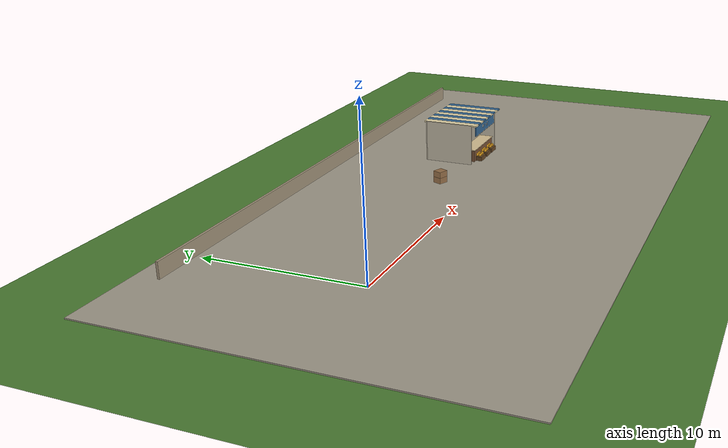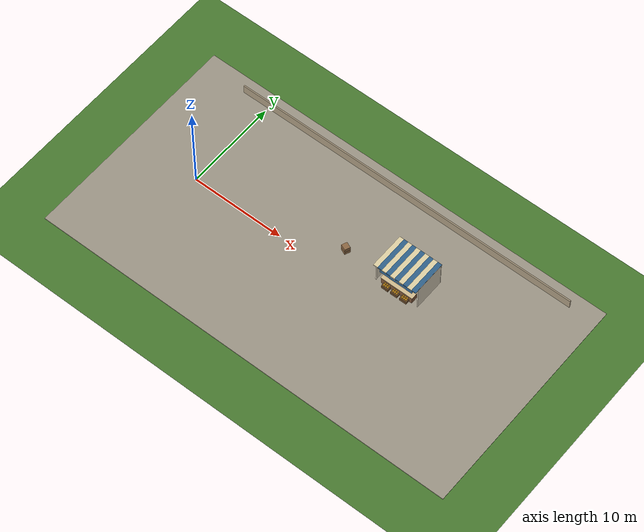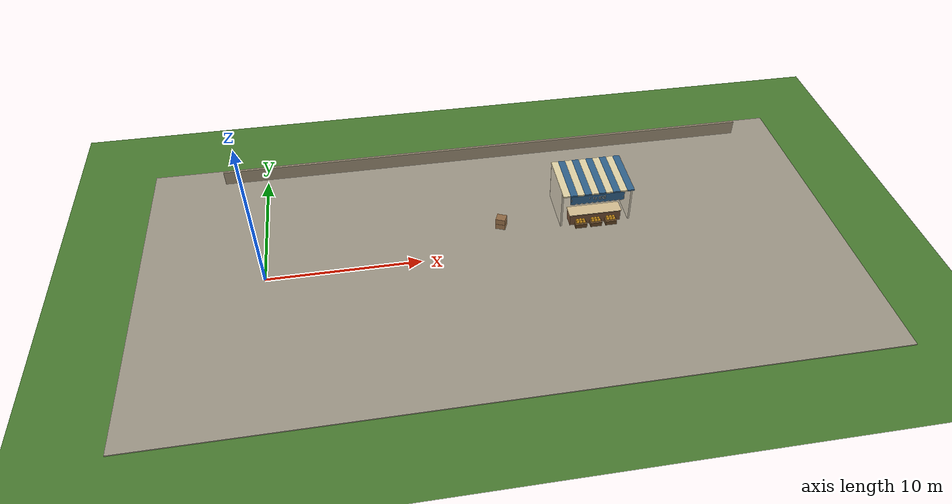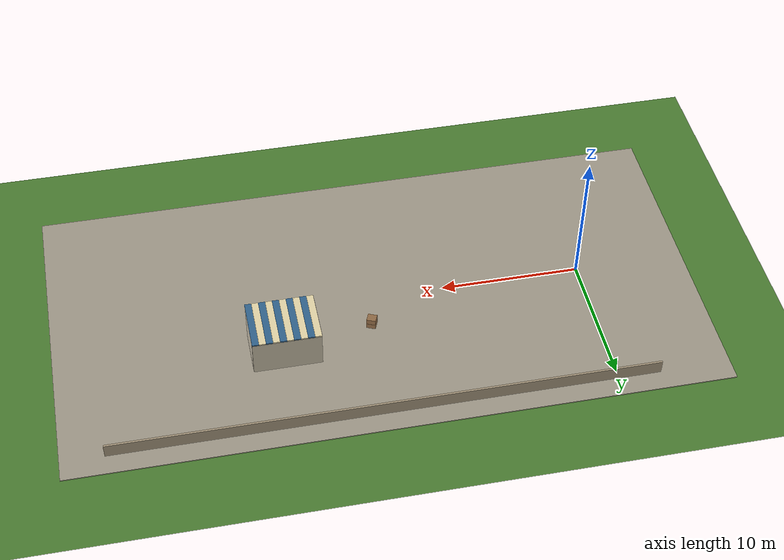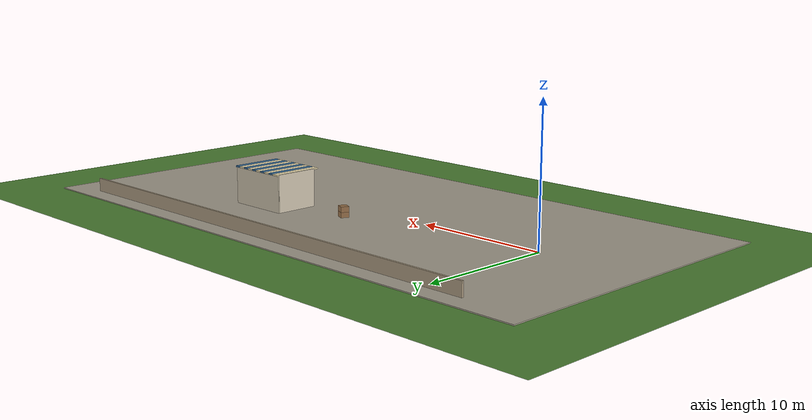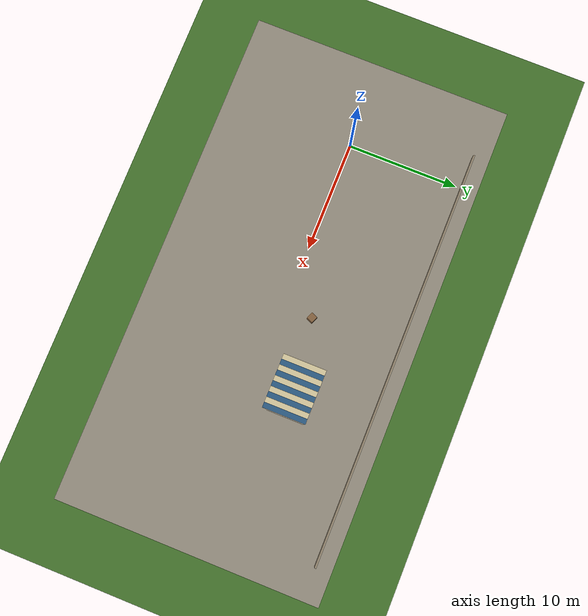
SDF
<sdf version="1.10">
 <world name="swan_town">
  <model name="ground_plane">
   <pose>-14 30 -0.025 0 0 0</pose>
   <static>true</static>
   <link name="link">
    <collision name="collision">
     <geometry><plane><normal>0 0 1</normal><size>100 100</size></plane></geometry>
    </collision>
    <visual name="visual">
     <geometry><plane><normal>0 0 1</normal><size>100 100</size></plane></geometry>
     <material><ambient>0.3 0.5 0.2 1</ambient><diffuse>0.3 0.5 0.2 1</diffuse></material>
    </visual>
   </link>
  </model>
  <model name="ground">
   <static>true</static>
   <pose>15 0 -0.1 0 0 0</pose>
   <link name="body">
    <collision name="box_collision"><geometry><box><size>46 24 0.2</size></box></geometry></collision>
    <visual name="box_visual">
     <geometry><box><size>46 24 0.2</size></box></geometry>
     <material><ambient>0.64 0.61 0.55 1</ambient><diffuse>0.64 0.61 0.55 1</diffuse></material>
    </visual>
   </link>
  </model>
  <model name="boundary_1">
   <static>true</static>
   <pose>16 10.5 0.5 0 0 0</pose>
   <link name="body">
    <collision name="box_collision"><geometry><box><size>38 0.15 1</size></box></geometry></collision>
    <visual name="box_visual">
     <geometry><box><size>38 0.15 1</size></box></geometry>
     <material><ambient>0.65 0.59 0.49 1</ambient><diffuse>0.65 0.59 0.49 1</diffuse></material>
    </visual>
   </link>
  </model>
  <model name="stall_02">
   <static>true</static>
   <pose>22 3.5471 0 0 0 0</pose>
   <link name="body">
    <collision name="rear_collision">
     <pose>0 1.65 1.4 0 0 0</pose>
     <geometry><box><size>4.8 0.15 2.8</size></box></geometry>
    </collision>
    <visual name="rear_visual">
     <pose>0 1.65 1.4 0 0 0</pose>
     <geometry><box><size>4.8 0.15 2.8</size></box></geometry>
     <material><ambient>0.78 0.74 0.65 1</ambient><diffuse>0.78 0.74 0.65 1</diffuse></material>
    </visual>
    <collision name="side_-2.35_collision">
     <pose>-2.35 0 1.4 0 0 0</pose>
     <geometry><box><size>0.12 3.3 2.8</size></box></geometry>
    </collision>
    <visual name="side_-2.35_visual">
     <pose>-2.35 0 1.4 0 0 0</pose>
     <geometry><box><size>0.12 3.3 2.8</size></box></geometry>
     <material><ambient>0.81 0.77 0.69 1</ambient><diffuse>0.81 0.77 0.69 1</diffuse></material>
    </visual>
    <collision name="side_2.35_collision">
     <pose>2.35 0 1.4 0 0 0</pose>
     <geometry><box><size>0.12 3.3 2.8</size></box></geometry>
    </collision>
    <visual name="side_2.35_visual">
     <pose>2.35 0 1.4 0 0 0</pose>
     <geometry><box><size>0.12 3.3 2.8</size></box></geometry>
     <material><ambient>0.81 0.77 0.69 1</ambient><diffuse>0.81 0.77 0.69 1</diffuse></material>
    </visual>
    <collision name="counter_collision">
     <pose>0 -1.22 0.4 0 0 0</pose>
     <geometry><box><size>3.5 0.85 0.8</size></box></geometry>
    </collision>
    <visual name="counter_visual">
     <pose>0 -1.22 0.4 0 0 0</pose>
     <geometry><box><size>3.5 0.85 0.8</size></box></geometry>
     <material><ambient>0.47 0.32 0.21 1</ambient><diffuse>0.47 0.32 0.21 1</diffuse></material>
    </visual>
    <collision name="counter_top_collision">
     <pose>0 -1.22 0.83 0 0 0</pose>
     <geometry><box><size>3.6 0.95 0.06</size></box></geometry>
    </collision>
    <visual name="counter_top_visual">
     <pose>0 -1.22 0.83 0 0 0</pose>
     <geometry><box><size>3.6 0.95 0.06</size></box></geometry>
     <material><ambient>0.86 0.77 0.59 1</ambient><diffuse>0.86 0.77 0.59 1</diffuse></material>
    </visual>
    <collision name="awning_0_collision">
     <pose>-2.16 -0.1 2.78 0 0 0</pose>
     <geometry><box><size>0.48 3.85 0.1</size></box></geometry>
    </collision>
    <visual name="awning_0_visual">
     <pose>-2.16 -0.1 2.78 0 0 0</pose>
     <geometry><box><size>0.48 3.85 0.1</size></box></geometry>
     <material><ambient>0.92 0.86 0.68 1</ambient><diffuse>0.92 0.86 0.68 1</diffuse></material>
    </visual>
    <collision name="awning_1_collision">
     <pose>-1.68 -0.1 2.78 0 0 0</pose>
     <geometry><box><size>0.48 3.85 0.1</size></box></geometry>
    </collision>
    <visual name="awning_1_visual">
     <pose>-1.68 -0.1 2.78 0 0 0</pose>
     <geometry><box><size>0.48 3.85 0.1</size></box></geometry>
     <material><ambient>0.2 0.4 0.57 1</ambient><diffuse>0.2 0.4 0.57 1</diffuse></material>
    </visual>
    <collision name="awning_2_collision">
     <pose>-1.2 -0.1 2.78 0 0 0</pose>
     <geometry><box><size>0.48 3.85 0.1</size></box></geometry>
    </collision>
    <visual name="awning_2_visual">
     <pose>-1.2 -0.1 2.78 0 0 0</pose>
     <geometry><box><size>0.48 3.85 0.1</size></box></geometry>
     <material><ambient>0.92 0.86 0.68 1</ambient><diffuse>0.92 0.86 0.68 1</diffuse></material>
    </visual>
    <collision name="awning_3_collision">
     <pose>-0.72 -0.1 2.78 0 0 0</pose>
     <geometry><box><size>0.48 3.85 0.1</size></box></geometry>
    </collision>
    <visual name="awning_3_visual">
     <pose>-0.72 -0.1 2.78 0 0 0</pose>
     <geometry><box><size>0.48 3.85 0.1</size></box></geometry>
     <material><ambient>0.2 0.4 0.57 1</ambient><diffuse>0.2 0.4 0.57 1</diffuse></material>
    </visual>
    <collision name="awning_4_collision">
     <pose>-0.24 -0.1 2.78 0 0 0</pose>
     <geometry><box><size>0.48 3.85 0.1</size></box></geometry>
    </collision>
    <visual name="awning_4_visual">
     <pose>-0.24 -0.1 2.78 0 0 0</pose>
     <geometry><box><size>0.48 3.85 0.1</size></box></geometry>
     <material><ambient>0.92 0.86 0.68 1</ambient><diffuse>0.92 0.86 0.68 1</diffuse></material>
    </visual>
    <collision name="awning_5_collision">
     <pose>0.24 -0.1 2.78 0 0 0</pose>
     <geometry><box><size>0.48 3.85 0.1</size></box></geometry>
    </collision>
    <visual name="awning_5_visual">
     <pose>0.24 -0.1 2.78 0 0 0</pose>
     <geometry><box><size>0.48 3.85 0.1</size></box></geometry>
     <material><ambient>0.2 0.4 0.57 1</ambient><diffuse>0.2 0.4 0.57 1</diffuse></material>
    </visual>
    <collision name="awning_6_collision">
     <pose>0.72 -0.1 2.78 0 0 0</pose>
     <geometry><box><size>0.48 3.85 0.1</size></box></geometry>
    </collision>
    <visual name="awning_6_visual">
     <pose>0.72 -0.1 2.78 0 0 0</pose>
     <geometry><box><size>0.48 3.85 0.1</size></box></geometry>
     <material><ambient>0.92 0.86 0.68 1</ambient><diffuse>0.92 0.86 0.68 1</diffuse></material>
    </visual>
    <collision name="awning_7_collision">
     <pose>1.2 -0.1 2.78 0 0 0</pose>
     <geometry><box><size>0.48 3.85 0.1</size></box></geometry>
    </collision>
    <visual name="awning_7_visual">
     <pose>1.2 -0.1 2.78 0 0 0</pose>
     <geometry><box><size>0.48 3.85 0.1</size></box></geometry>
     <material><ambient>0.2 0.4 0.57 1</ambient><diffuse>0.2 0.4 0.57 1</diffuse></material>
    </visual>
    <collision name="awning_8_collision">
     <pose>1.68 -0.1 2.78 0 0 0</pose>
     <geometry><box><size>0.48 3.85 0.1</size></box></geometry>
    </collision>
    <visual name="awning_8_visual">
     <pose>1.68 -0.1 2.78 0 0 0</pose>
     <geometry><box><size>0.48 3.85 0.1</size></box></geometry>
     <material><ambient>0.92 0.86 0.68 1</ambient><diffuse>0.92 0.86 0.68 1</diffuse></material>
    </visual>
    <collision name="awning_9_collision">
     <pose>2.16 -0.1 2.78 0 0 0</pose>
     <geometry><box><size>0.48 3.85 0.1</size></box></geometry>
    </collision>
    <visual name="awning_9_visual">
     <pose>2.16 -0.1 2.78 0 0 0</pose>
     <geometry><box><size>0.48 3.85 0.1</size></box></geometry>
     <material><ambient>0.2 0.4 0.57 1</ambient><diffuse>0.2 0.4 0.57 1</diffuse></material>
    </visual>
    <collision name="crate_-1_collision">
     <pose>-1.04 -1.77 0.15 0 0 0</pose>
     <geometry><box><size>0.78 0.6 0.3</size></box></geometry>
    </collision>
    <visual name="crate_-1_visual">
     <pose>-1.04 -1.77 0.15 0 0 0</pose>
     <geometry><box><size>0.78 0.6 0.3</size></box></geometry>
     <material><ambient>0.4 0.28 0.15 1</ambient><diffuse>0.4 0.28 0.15 1</diffuse></material>
    </visual>
    <visual name="produce_-1_0_visual">
     <pose>-1.25 -1.88 0.39 0 0 0</pose>
     <geometry><sphere><radius>0.105</radius></sphere></geometry>
     <material><ambient>0.84 0.59 0.1 1</ambient><diffuse>0.84 0.59 0.1 1</diffuse></material>
    </visual>
    <visual name="produce_-1_1_visual">
     <pose>-1.04 -1.88 0.39 0 0 0</pose>
     <geometry><sphere><radius>0.105</radius></sphere></geometry>
     <material><ambient>0.84 0.59 0.1 1</ambient><diffuse>0.84 0.59 0.1 1</diffuse></material>
    </visual>
    <visual name="produce_-1_2_visual">
     <pose>-0.83 -1.88 0.39 0 0 0</pose>
     <geometry><sphere><radius>0.105</radius></sphere></geometry>
     <material><ambient>0.84 0.59 0.1 1</ambient><diffuse>0.84 0.59 0.1 1</diffuse></material>
    </visual>
    <visual name="produce_-1_3_visual">
     <pose>-1.25 -1.66 0.39 0 0 0</pose>
     <geometry><sphere><radius>0.105</radius></sphere></geometry>
     <material><ambient>0.84 0.59 0.1 1</ambient><diffuse>0.84 0.59 0.1 1</diffuse></material>
    </visual>
    <visual name="produce_-1_4_visual">
     <pose>-1.04 -1.66 0.39 0 0 0</pose>
     <geometry><sphere><radius>0.105</radius></sphere></geometry>
     <material><ambient>0.84 0.59 0.1 1</ambient><diffuse>0.84 0.59 0.1 1</diffuse></material>
    </visual>
    <visual name="produce_-1_5_visual">
     <pose>-0.83 -1.66 0.39 0 0 0</pose>
     <geometry><sphere><radius>0.105</radius></sphere></geometry>
     <material><ambient>0.84 0.59 0.1 1</ambient><diffuse>0.84 0.59 0.1 1</diffuse></material>
    </visual>
    <collision name="crate_0_collision">
     <pose>0 -1.77 0.15 0 0 0</pose>
     <geometry><box><size>0.78 0.6 0.3</size></box></geometry>
    </collision>
    <visual name="crate_0_visual">
     <pose>0 -1.77 0.15 0 0 0</pose>
     <geometry><box><size>0.78 0.6 0.3</size></box></geometry>
     <material><ambient>0.4 0.28 0.15 1</ambient><diffuse>0.4 0.28 0.15 1</diffuse></material>
    </visual>
    <visual name="produce_0_0_visual">
     <pose>-0.21 -1.88 0.39 0 0 0</pose>
     <geometry><sphere><radius>0.105</radius></sphere></geometry>
     <material><ambient>0.84 0.59 0.1 1</ambient><diffuse>0.84 0.59 0.1 1</diffuse></material>
    </visual>
    <visual name="produce_0_1_visual">
     <pose>0 -1.88 0.39 0 0 0</pose>
     <geometry><sphere><radius>0.105</radius></sphere></geometry>
     <material><ambient>0.84 0.59 0.1 1</ambient><diffuse>0.84 0.59 0.1 1</diffuse></material>
    </visual>
    <visual name="produce_0_2_visual">
     <pose>0.21 -1.88 0.39 0 0 0</pose>
     <geometry><sphere><radius>0.105</radius></sphere></geometry>
     <material><ambient>0.84 0.59 0.1 1</ambient><diffuse>0.84 0.59 0.1 1</diffuse></material>
    </visual>
    <visual name="produce_0_3_visual">
     <pose>-0.21 -1.66 0.39 0 0 0</pose>
     <geometry><sphere><radius>0.105</radius></sphere></geometry>
     <material><ambient>0.84 0.59 0.1 1</ambient><diffuse>0.84 0.59 0.1 1</diffuse></material>
    </visual>
    <visual name="produce_0_4_visual">
     <pose>0 -1.66 0.39 0 0 0</pose>
     <geometry><sphere><radius>0.105</radius></sphere></geometry>
     <material><ambient>0.84 0.59 0.1 1</ambient><diffuse>0.84 0.59 0.1 1</diffuse></material>
    </visual>
    <visual name="produce_0_5_visual">
     <pose>0.21 -1.66 0.39 0 0 0</pose>
     <geometry><sphere><radius>0.105</radius></sphere></geometry>
     <material><ambient>0.84 0.59 0.1 1</ambient><diffuse>0.84 0.59 0.1 1</diffuse></material>
    </visual>
    <collision name="crate_1_collision">
     <pose>1.04 -1.77 0.15 0 0 0</pose>
     <geometry><box><size>0.78 0.6 0.3</size></box></geometry>
    </collision>
    <visual name="crate_1_visual">
     <pose>1.04 -1.77 0.15 0 0 0</pose>
     <geometry><box><size>0.78 0.6 0.3</size></box></geometry>
     <material><ambient>0.4 0.28 0.15 1</ambient><diffuse>0.4 0.28 0.15 1</diffuse></material>
    </visual>
    <visual name="produce_1_0_visual">
     <pose>0.83 -1.88 0.39 0 0 0</pose>
     <geometry><sphere><radius>0.105</radius></sphere></geometry>
     <material><ambient>0.84 0.59 0.1 1</ambient><diffuse>0.84 0.59 0.1 1</diffuse></material>
    </visual>
    <visual name="produce_1_1_visual">
     <pose>1.04 -1.88 0.39 0 0 0</pose>
     <geometry><sphere><radius>0.105</radius></sphere></geometry>
     <material><ambient>0.84 0.59 0.1 1</ambient><diffuse>0.84 0.59 0.1 1</diffuse></material>
    </visual>
    <visual name="produce_1_2_visual">
     <pose>1.25 -1.88 0.39 0 0 0</pose>
     <geometry><sphere><radius>0.105</radius></sphere></geometry>
     <material><ambient>0.84 0.59 0.1 1</ambient><diffuse>0.84 0.59 0.1 1</diffuse></material>
    </visual>
    <visual name="produce_1_3_visual">
     <pose>0.83 -1.66 0.39 0 0 0</pose>
     <geometry><sphere><radius>0.105</radius></sphere></geometry>
     <material><ambient>0.84 0.59 0.1 1</ambient><diffuse>0.84 0.59 0.1 1</diffuse></material>
    </visual>
    <visual name="produce_1_4_visual">
     <pose>1.04 -1.66 0.39 0 0 0</pose>
     <geometry><sphere><radius>0.105</radius></sphere></geometry>
     <material><ambient>0.84 0.59 0.1 1</ambient><diffuse>0.84 0.59 0.1 1</diffuse></material>
    </visual>
    <visual name="produce_1_5_visual">
     <pose>1.25 -1.66 0.39 0 0 0</pose>
     <geometry><sphere><radius>0.105</radius></sphere></geometry>
     <material><ambient>0.84 0.59 0.1 1</ambient><diffuse>0.84 0.59 0.1 1</diffuse></material>
    </visual>
   </link>
  </model>
  <model name="signboard_2">
   <static>true</static>
   <pose>22 1.7871 2.24 0 0 0</pose>
   <link name="body">
    <collision name="box_collision"><geometry><box><size>3.65 0.08 0.72</size></box></geometry></collision>
    <visual name="box_visual">
     <geometry><box><size>3.65 0.08 0.72</size></box></geometry>
     <material><ambient>0.2 0.4 0.57 1</ambient><diffuse>0.2 0.4 0.57 1</diffuse></material>
    </visual>
   </link>
  </model>
  <model name="sign_shop_2">
   <static>true</static>
   <pose>22 1.7391 2.24 0 0 0</pose>
   <link name="body">
    <visual name="top_visual">
     <pose>0 -0.003 0.32062 0 0 0</pose>
     <geometry><box><size>3.5136 0.003 0.0108</size></box></geometry>
     <material><ambient>1 0.961 0.875 1</ambient><diffuse>1 0.961 0.875 1</diffuse></material>
    </visual>
    <visual name="bottom_visual">
     <pose>0 -0.003 -0.32062 0 0 0</pose>
     <geometry><box><size>3.5136 0.003 0.0108</size></box></geometry>
     <material><ambient>1 0.961 0.875 1</ambient><diffuse>1 0.961 0.875 1</diffuse></material>
    </visual>
    <visual name="left_visual">
     <pose>-1.7568 -0.003 0 0 0 0</pose>
     <geometry><box><size>0.0108 0.003 0.64125</size></box></geometry>
     <material><ambient>1 0.961 0.875 1</ambient><diffuse>1 0.961 0.875 1</diffuse></material>
    </visual>
    <visual name="right_visual">
     <pose>1.7568 -0.003 0 0 0 0</pose>
     <geometry><box><size>0.0108 0.003 0.64125</size></box></geometry>
     <material><ambient>1 0.961 0.875 1</ambient><diffuse>1 0.961 0.875 1</diffuse></material>
    </visual>
    <visual name="ink_0_visual">
     <pose>0.21563 -0.003 0.15938 0 0 0</pose>
     <geometry><box><size>0.01875 0.003 0.01875</size></box></geometry>
     <material><ambient>1 0.961 0.875 1</ambient><diffuse>1 0.961 0.875 1</diffuse></material>
    </visual>
    <visual name="ink_1_visual">
     <pose>-0.225 -0.003 0.13125 0 0 0</pose>
     <geometry><box><size>0.1125 0.003 0.0375</size></box></geometry>
     <material><ambient>1 0.961 0.875 1</ambient><diffuse>1 0.961 0.875 1</diffuse></material>
    </visual>
    <visual name="ink_2_visual">
     <pose>0.20625 -0.003 0.12188 0 0 0</pose>
     <geometry><box><size>0.0375 0.003 0.05625</size></box></geometry>
     <material><ambient>1 0.961 0.875 1</ambient><diffuse>1 0.961 0.875 1</diffuse></material>
    </visual>
    <visual name="ink_3_visual">
     <pose>0.2625 -0.003 0.13125 0 0 0</pose>
     <geometry><box><size>0.0375 0.003 0.075</size></box></geometry>
     <material><ambient>1 0.961 0.875 1</ambient><diffuse>1 0.961 0.875 1</diffuse></material>
    </visual>
    <visual name="ink_4_visual">
     <pose>0.47813 -0.003 0.10313 0 0 0</pose>
     <geometry><box><size>0.01875 0.003 0.01875</size></box></geometry>
     <material><ambient>1 0.961 0.875 1</ambient><diffuse>1 0.961 0.875 1</diffuse></material>
    </visual>
    <visual name="ink_5_visual">
     <pose>0.525 -0.003 0.13125 0 0 0</pose>
     <geometry><box><size>0.0375 0.003 0.075</size></box></geometry>
     <material><ambient>1 0.961 0.875 1</ambient><diffuse>1 0.961 0.875 1</diffuse></material>
    </visual>
    <visual name="ink_6_visual">
     <pose>-0.54375 -0.003 0.1125 0 0 0</pose>
     <geometry><box><size>0.0375 0.003 0.075</size></box></geometry>
     <material><ambient>1 0.961 0.875 1</ambient><diffuse>1 0.961 0.875 1</diffuse></material>
    </visual>
    <visual name="ink_7_visual">
     <pose>-0.44062 -0.003 0.1125 0 0 0</pose>
     <geometry><box><size>0.01875 0.003 0.075</size></box></geometry>
     <material><ambient>1 0.961 0.875 1</ambient><diffuse>1 0.961 0.875 1</diffuse></material>
    </visual>
    <visual name="ink_8_visual">
     <pose>-0.10312 -0.003 0.12188 0 0 0</pose>
     <geometry><box><size>0.01875 0.003 0.09375</size></box></geometry>
     <material><ambient>1 0.961 0.875 1</ambient><diffuse>1 0.961 0.875 1</diffuse></material>
    </visual>
    <visual name="ink_9_visual">
     <pose>0.1125 -0.003 0.1125 0 0 0</pose>
     <geometry><box><size>0.0375 0.003 0.075</size></box></geometry>
     <material><ambient>1 0.961 0.875 1</ambient><diffuse>1 0.961 0.875 1</diffuse></material>
    </visual>
    <visual name="ink_10_visual">
     <pose>0.23437 -0.003 0.084375 0 0 0</pose>
     <geometry><box><size>0.09375 0.003 0.01875</size></box></geometry>
     <material><ambient>1 0.961 0.875 1</ambient><diffuse>1 0.961 0.875 1</diffuse></material>
    </visual>
    <visual name="ink_11_visual">
     <pose>0.39375 -0.003 0.1125 0 0 0</pose>
     <geometry><box><size>0.0375 0.003 0.075</size></box></geometry>
     <material><ambient>1 0.961 0.875 1</ambient><diffuse>1 0.961 0.875 1</diffuse></material>
    </visual>
    <visual name="ink_12_visual">
     <pose>0.49688 -0.003 0.084375 0 0 0</pose>
     <geometry><box><size>0.09375 0.003 0.01875</size></box></geometry>
     <material><ambient>1 0.961 0.875 1</ambient><diffuse>1 0.961 0.875 1</diffuse></material>
    </visual>
    <visual name="ink_13_visual">
     <pose>-0.49687 -0.003 0.065625 0 0 0</pose>
     <geometry><box><size>0.13125 0.003 0.01875</size></box></geometry>
     <material><ambient>1 0.961 0.875 1</ambient><diffuse>1 0.961 0.875 1</diffuse></material>
    </visual>
    <visual name="ink_14_visual">
     <pose>-0.36563 -0.003 0.1125 0 0 0</pose>
     <geometry><box><size>0.01875 0.003 0.1125</size></box></geometry>
     <material><ambient>1 0.961 0.875 1</ambient><diffuse>1 0.961 0.875 1</diffuse></material>
    </visual>
    <visual name="ink_15_visual">
     <pose>-0.09375 -0.003 0.065625 0 0 0</pose>
     <geometry><box><size>0.0375 0.003 0.01875</size></box></geometry>
     <material><ambient>1 0.961 0.875 1</ambient><diffuse>1 0.961 0.875 1</diffuse></material>
    </visual>
    <visual name="ink_16_visual">
     <pose>0.12187 -0.003 0.065625 0 0 0</pose>
     <geometry><box><size>0.05625 0.003 0.01875</size></box></geometry>
     <material><ambient>1 0.961 0.875 1</ambient><diffuse>1 0.961 0.875 1</diffuse></material>
    </visual>
    <visual name="ink_17_visual">
     <pose>0.39375 -0.003 0.065625 0 0 0</pose>
     <geometry><box><size>0.075 0.003 0.01875</size></box></geometry>
     <material><ambient>1 0.961 0.875 1</ambient><diffuse>1 0.961 0.875 1</diffuse></material>
    </visual>
    <visual name="ink_18_visual">
     <pose>-0.34688 -0.003 0.046875 0 0 0</pose>
     <geometry><box><size>0.05625 0.003 0.01875</size></box></geometry>
     <material><ambient>1 0.961 0.875 1</ambient><diffuse>1 0.961 0.875 1</diffuse></material>
    </visual>
    <visual name="ink_19_visual">
     <pose>-0.075 -0.003 0.046875 0 0 0</pose>
     <geometry><box><size>0.075 0.003 0.01875</size></box></geometry>
     <material><ambient>1 0.961 0.875 1</ambient><diffuse>1 0.961 0.875 1</diffuse></material>
    </visual>
    <visual name="ink_20_visual">
     <pose>0.09375 -0.003 0.046875 0 0 0</pose>
     <geometry><box><size>0.0375 0.003 0.01875</size></box></geometry>
     <material><ambient>1 0.961 0.875 1</ambient><diffuse>1 0.961 0.875 1</diffuse></material>
    </visual>
    <visual name="ink_21_visual">
     <pose>0.15 -0.003 0.046875 0 0 0</pose>
     <geometry><box><size>0.0375 0.003 0.01875</size></box></geometry>
     <material><ambient>1 0.961 0.875 1</ambient><diffuse>1 0.961 0.875 1</diffuse></material>
    </visual>
    <visual name="ink_22_visual">
     <pose>0.20625 -0.003 0.05625 0 0 0</pose>
     <geometry><box><size>0.0375 0.003 0.0375</size></box></geometry>
     <material><ambient>1 0.961 0.875 1</ambient><diffuse>1 0.961 0.875 1</diffuse></material>
    </visual>
    <visual name="ink_23_visual">
     <pose>0.36563 -0.003 0.046875 0 0 0</pose>
     <geometry><box><size>0.01875 0.003 0.01875</size></box></geometry>
     <material><ambient>1 0.961 0.875 1</ambient><diffuse>1 0.961 0.875 1</diffuse></material>
    </visual>
    <visual name="ink_24_visual">
     <pose>0.43125 -0.003 0.046875 0 0 0</pose>
     <geometry><box><size>0.0375 0.003 0.01875</size></box></geometry>
     <material><ambient>1 0.961 0.875 1</ambient><diffuse>1 0.961 0.875 1</diffuse></material>
    </visual>
    <visual name="ink_25_visual">
     <pose>0.075 -0.003 0.028125 0 0 0</pose>
     <geometry><box><size>0.0375 0.003 0.01875</size></box></geometry>
     <material><ambient>1 0.961 0.875 1</ambient><diffuse>1 0.961 0.875 1</diffuse></material>
    </visual>
    <visual name="ink_26_visual">
     <pose>0.1875 -0.003 0.028125 0 0 0</pose>
     <geometry><box><size>0.075 0.003 0.01875</size></box></geometry>
     <material><ambient>1 0.961 0.875 1</ambient><diffuse>1 0.961 0.875 1</diffuse></material>
    </visual>
    <visual name="ink_27_visual">
     <pose>0.34687 -0.003 0.028125 0 0 0</pose>
     <geometry><box><size>0.05625 0.003 0.01875</size></box></geometry>
     <material><ambient>1 0.961 0.875 1</ambient><diffuse>1 0.961 0.875 1</diffuse></material>
    </visual>
    <visual name="ink_28_visual">
     <pose>0.45 -0.003 0.028125 0 0 0</pose>
     <geometry><box><size>0.0375 0.003 0.01875</size></box></geometry>
     <material><ambient>1 0.961 0.875 1</ambient><diffuse>1 0.961 0.875 1</diffuse></material>
    </visual>
    <visual name="ink_29_visual">
     <pose>0.2625 -0.003 0.0375 0 0 0</pose>
     <geometry><box><size>0.0375 0.003 0.075</size></box></geometry>
     <material><ambient>1 0.961 0.875 1</ambient><diffuse>1 0.961 0.875 1</diffuse></material>
    </visual>
    <visual name="ink_30_visual">
     <pose>0.32813 -0.003 0.009375 0 0 0</pose>
     <geometry><box><size>0.01875 0.003 0.01875</size></box></geometry>
     <material><ambient>1 0.961 0.875 1</ambient><diffuse>1 0.961 0.875 1</diffuse></material>
    </visual>
    <visual name="ink_31_visual">
     <pose>-0.54375 -0.003 0.01875 0 0 0</pose>
     <geometry><box><size>0.0375 0.003 0.075</size></box></geometry>
     <material><ambient>1 0.961 0.875 1</ambient><diffuse>1 0.961 0.875 1</diffuse></material>
    </visual>
    <visual name="ink_32_visual">
     <pose>-0.44062 -0.003 0.01875 0 0 0</pose>
     <geometry><box><size>0.01875 0.003 0.075</size></box></geometry>
     <material><ambient>1 0.961 0.875 1</ambient><diffuse>1 0.961 0.875 1</diffuse></material>
    </visual>
    <visual name="ink_33_visual">
     <pose>-0.27187 -0.003 0.046875 0 0 0</pose>
     <geometry><box><size>0.01875 0.003 0.13125</size></box></geometry>
     <material><ambient>1 0.961 0.875 1</ambient><diffuse>1 0.961 0.875 1</diffuse></material>
    </visual>
    <visual name="ink_34_visual">
     <pose>-0.15 -0.003 -0.009375 0 0 0</pose>
     <geometry><box><size>0.0375 0.003 0.01875</size></box></geometry>
     <material><ambient>1 0.961 0.875 1</ambient><diffuse>1 0.961 0.875 1</diffuse></material>
    </visual>
    <visual name="ink_35_visual">
     <pose>0.1875 -0.003 -0.009375 0 0 0</pose>
     <geometry><box><size>0.1125 0.003 0.01875</size></box></geometry>
     <material><ambient>1 0.961 0.875 1</ambient><diffuse>1 0.961 0.875 1</diffuse></material>
    </visual>
    <visual name="ink_36_visual">
     <pose>0.525 -0.003 0.028125 0 0 0</pose>
     <geometry><box><size>0.0375 0.003 0.09375</size></box></geometry>
     <material><ambient>1 0.961 0.875 1</ambient><diffuse>1 0.961 0.875 1</diffuse></material>
    </visual>
    <visual name="ink_37_visual">
     <pose>-0.49687 -0.003 -0.028125 0 0 0</pose>
     <geometry><box><size>0.13125 0.003 0.01875</size></box></geometry>
     <material><ambient>1 0.961 0.875 1</ambient><diffuse>1 0.961 0.875 1</diffuse></material>
    </visual>
    <visual name="ink_38_visual">
     <pose>-0.20625 -0.003 -0.028125 0 0 0</pose>
     <geometry><box><size>0.15 0.003 0.01875</size></box></geometry>
     <material><ambient>1 0.961 0.875 1</ambient><diffuse>1 0.961 0.875 1</diffuse></material>
    </visual>
    <visual name="ink_39_visual">
     <pose>0.14062 -0.003 -0.028125 0 0 0</pose>
     <geometry><box><size>0.05625 0.003 0.01875</size></box></geometry>
     <material><ambient>1 0.961 0.875 1</ambient><diffuse>1 0.961 0.875 1</diffuse></material>
    </visual>
    <visual name="ink_40_visual">
     <pose>0.25312 -0.003 -0.028125 0 0 0</pose>
     <geometry><box><size>0.05625 0.003 0.01875</size></box></geometry>
     <material><ambient>1 0.961 0.875 1</ambient><diffuse>1 0.961 0.875 1</diffuse></material>
    </visual>
    <visual name="ink_41_visual">
     <pose>0.53438 -0.003 -0.028125 0 0 0</pose>
     <geometry><box><size>0.01875 0.003 0.01875</size></box></geometry>
     <material><ambient>1 0.961 0.875 1</ambient><diffuse>1 0.961 0.875 1</diffuse></material>
    </visual>
    <visual name="ink_42_visual">
     <pose>0.1125 -0.003 -0.05625 0 0 0</pose>
     <geometry><box><size>0.0375 0.003 0.0375</size></box></geometry>
     <material><ambient>1 0.961 0.875 1</ambient><diffuse>1 0.961 0.875 1</diffuse></material>
    </visual>
    <visual name="ink_43_visual">
     <pose>0.2625 -0.003 -0.05625 0 0 0</pose>
     <geometry><box><size>0.0375 0.003 0.0375</size></box></geometry>
     <material><ambient>1 0.961 0.875 1</ambient><diffuse>1 0.961 0.875 1</diffuse></material>
    </visual>
    <visual name="ink_44_visual">
     <pose>0.375 -0.003 -0.046875 0 0 0</pose>
     <geometry><box><size>0.0375 0.003 0.05625</size></box></geometry>
     <material><ambient>1 0.961 0.875 1</ambient><diffuse>1 0.961 0.875 1</diffuse></material>
    </visual>
    <visual name="ink_45_visual">
     <pose>0.1875 -0.003 -0.084375 0 0 0</pose>
     <geometry><box><size>0.15 0.003 0.01875</size></box></geometry>
     <material><ambient>1 0.961 0.875 1</ambient><diffuse>1 0.961 0.875 1</diffuse></material>
    </visual>
    <visual name="ink_46_visual">
     <pose>0.45 -0.003 -0.084375 0 0 0</pose>
     <geometry><box><size>0.1875 0.003 0.01875</size></box></geometry>
     <material><ambient>1 0.961 0.875 1</ambient><diffuse>1 0.961 0.875 1</diffuse></material>
    </visual>
    <visual name="ink_47_visual">
     <pose>-0.36563 -0.003 -0.0375 0 0 0</pose>
     <geometry><box><size>0.01875 0.003 0.15</size></box></geometry>
     <material><ambient>1 0.961 0.875 1</ambient><diffuse>1 0.961 0.875 1</diffuse></material>
    </visual>
    <visual name="ink_48_visual">
     <pose>-0.10312 -0.003 -0.0375 0 0 0</pose>
     <geometry><box><size>0.01875 0.003 0.15</size></box></geometry>
     <material><ambient>1 0.961 0.875 1</ambient><diffuse>1 0.961 0.875 1</diffuse></material>
    </visual>
    <visual name="ink_49_visual">
     <pose>0.1875 -0.003 -0.10313 0 0 0</pose>
     <geometry><box><size>0.075 0.003 0.01875</size></box></geometry>
     <material><ambient>1 0.961 0.875 1</ambient><diffuse>1 0.961 0.875 1</diffuse></material>
    </visual>
   </link>
  </model>
  <model name="stock_stack_1_0">
   <static>true</static>
   <pose>15.648 2.5571 0.2 0 0 -0.3959</pose>
   <link name="body">
    <collision name="box_collision"><geometry><box><size>0.65 0.6 0.4</size></box></geometry></collision>
    <visual name="box_visual">
     <geometry><box><size>0.65 0.6 0.4</size></box></geometry>
     <material><ambient>0.58 0.43 0.28 1</ambient><diffuse>0.58 0.43 0.28 1</diffuse></material>
    </visual>
   </link>
  </model>
  <model name="stock_stack_1_1">
   <static>true</static>
   <pose>15.648 2.5571 0.6 0 0 -0.3959</pose>
   <link name="body">
    <collision name="box_collision"><geometry><box><size>0.65 0.6 0.4</size></box></geometry></collision>
    <visual name="box_visual">
     <geometry><box><size>0.65 0.6 0.4</size></box></geometry>
     <material><ambient>0.58 0.43 0.28 1</ambient><diffuse>0.58 0.43 0.28 1</diffuse></material>
    </visual>
   </link>
  </model>
 </world>
</sdf>
